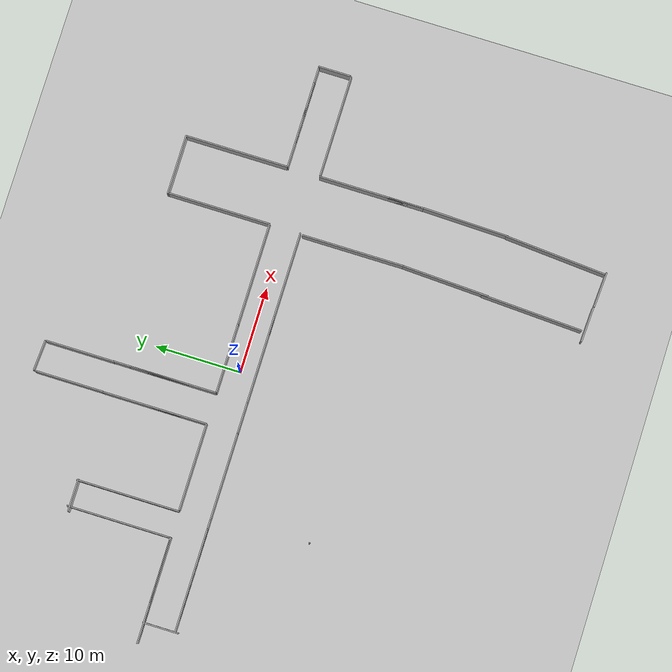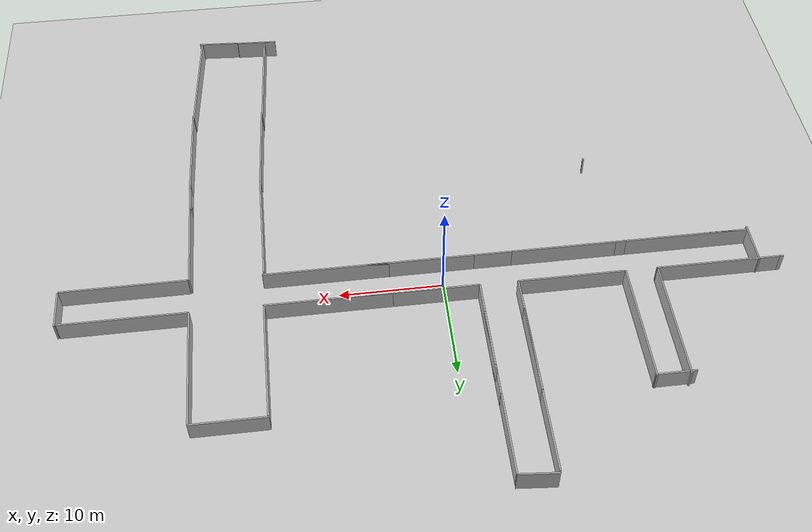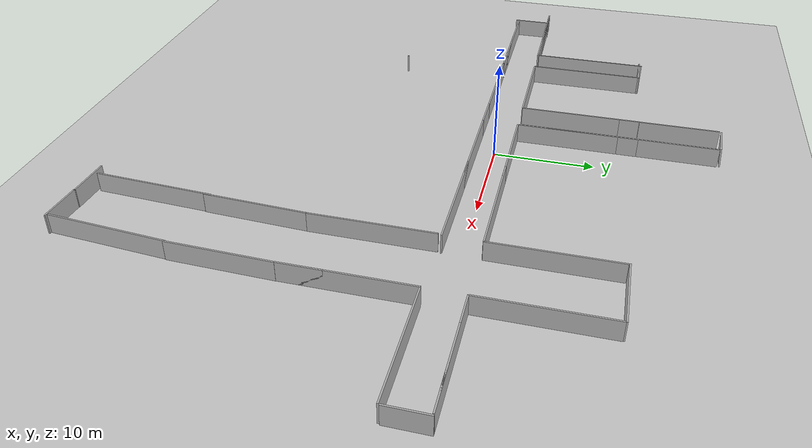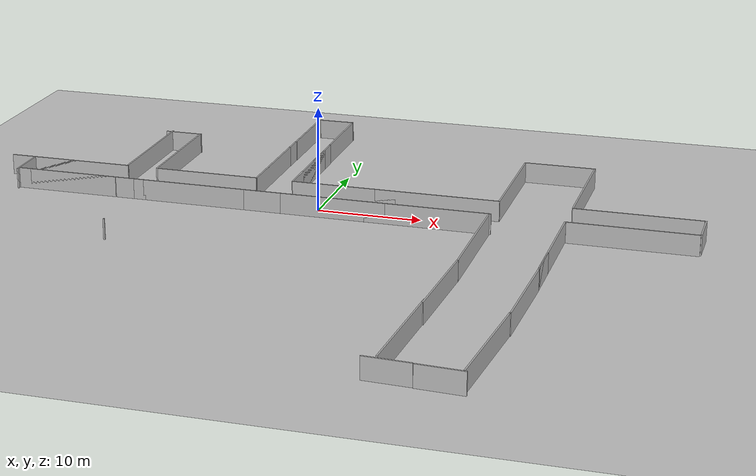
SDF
<sdf version="1.7">
 <world name="hallway_world">
  <physics type="ode">
   <max_step_size>0.001</max_step_size>
   <real_time_factor>1</real_time_factor>
   <real_time_update_rate>1000</real_time_update_rate>
  </physics>
  <light name="sun" type="directional">
   <pose>0 0 10 0 -0 0</pose>
   <diffuse>0.8 0.8 0.8 1</diffuse>
   <specular>0.2 0.2 0.2 1</specular>
   <attenuation>
    <range>1000</range>
    <constant>0.9</constant>
    <linear>0.01</linear>
    <quadratic>0.001</quadratic>
   </attenuation>
   <direction>-0.5 0.1 -0.9</direction>
   <spot><inner_angle>0</inner_angle><outer_angle>0</outer_angle><falloff>0</falloff></spot>
  </light>
  <model name="ground_plane">
   <static>1</static>
   <link name="link">
    <collision name="collision">
     <geometry><plane><normal>0 0 1</normal><size>100 100</size></plane></geometry>
     <surface><friction><ode><mu>100</mu><mu2>50</mu2></ode></friction></surface>
    </collision>
    <visual name="visual">
     <cast_shadows>0</cast_shadows>
     <geometry><plane><normal>0 0 1</normal><size>100 100</size></plane></geometry>
     <material>
      <script><uri>file://media/materials/scripts/gazebo.material</uri><name>Gazebo/Grey</name></script>
     </material>
    </visual>
   </link>
  </model>
  <scene><ambient>0.4 0.4 0.4 1</ambient><background>0.7 0.7 0.7 1</background><shadows>1</shadows></scene>
  <model name="straight_x_left_1">
   <static>1</static>
   <pose>-26.1049 1.825 1 0 -0 0</pose>
   <link name="link">
    <collision name="collision"><geometry><box><size>12 0.15 2</size></box></geometry></collision>
    <visual name="visual">
     <geometry><box><size>12 0.15 2</size></box></geometry>
     <material><ambient>0.7 0.7 0.7 1</ambient><diffuse>0.7 0.7 0.7 1</diffuse></material>
    </visual>
   </link>
  </model>
  <model name="straight_x_right_2">
   <static>1</static>
   <pose>-22.7931 -1.825 1 0 -0 0</pose>
   <link name="link">
    <collision name="collision"><geometry><box><size>12 0.15 2</size></box></geometry></collision>
    <visual name="visual">
     <geometry><box><size>12 0.15 2</size></box></geometry>
     <material><ambient>0.7 0.7 0.7 1</ambient><diffuse>0.7 0.7 0.7 1</diffuse></material>
    </visual>
   </link>
  </model>
  <model name="straight_x_left_3">
   <static>1</static>
   <pose>-26.4837 1.825 1 0 -0 0</pose>
   <link name="link">
    <collision name="collision"><geometry><box><size>12 0.15 2</size></box></geometry></collision>
    <visual name="visual">
     <geometry><box><size>12 0.15 2</size></box></geometry>
     <material><ambient>0.7 0.7 0.7 1</ambient><diffuse>0.7 0.7 0.7 1</diffuse></material>
    </visual>
   </link>
  </model>
  <model name="straight_x_right_4">
   <static>1</static>
   <pose>-24 -1.825 1 0 -0 0</pose>
   <link name="link">
    <collision name="collision"><geometry><box><size>12 0.15 2</size></box></geometry></collision>
    <visual name="visual">
     <geometry><box><size>12 0.15 2</size></box></geometry>
     <material><ambient>0.7 0.7 0.7 1</ambient><diffuse>0.7 0.7 0.7 1</diffuse></material>
    </visual>
   </link>
  </model>
  <model name="straight_y_left_5">
   <static>1</static>
   <pose>-20.192 7.9556 1 0 -0 0</pose>
   <link name="link">
    <collision name="collision"><geometry><box><size>0.15 12 2</size></box></geometry></collision>
    <visual name="visual">
     <geometry><box><size>0.15 12 2</size></box></geometry>
     <material><ambient>0.7 0.7 0.7 1</ambient><diffuse>0.7 0.7 0.7 1</diffuse></material>
    </visual>
   </link>
  </model>
  <model name="straight_y_right_6">
   <static>1</static>
   <pose>-17.1044 7.81507 1 0 -0 0</pose>
   <link name="link">
    <collision name="collision"><geometry><box><size>0.15 12 2</size></box></geometry></collision>
    <visual name="visual">
     <geometry><box><size>0.15 12 2</size></box></geometry>
     <material><ambient>0.7 0.7 0.7 1</ambient><diffuse>0.7 0.7 0.7 1</diffuse></material>
    </visual>
   </link>
  </model>
  <model name="l_inner_7">
   <static>1</static>
   <pose>-19.825 -1.825 1 0 -0 0</pose>
   <link name="link">
    <collision name="collision"><geometry><box><size>0.15 0.15 2</size></box></geometry></collision>
    <visual name="visual">
     <geometry><box><size>0.15 0.15 2</size></box></geometry>
     <material><ambient>0.7 0.7 0.7 1</ambient><diffuse>0.7 0.7 0.7 1</diffuse></material>
    </visual>
   </link>
  </model>
  <model name="straight_x_left_8">
   <static>1</static>
   <pose>-11.9125 1.825 1 0 -0 0</pose>
   <link name="link">
    <collision name="collision"><geometry><box><size>10.175 0.15 2</size></box></geometry></collision>
    <visual name="visual">
     <geometry><box><size>10.175 0.15 2</size></box></geometry>
     <material><ambient>0.7 0.7 0.7 1</ambient><diffuse>0.7 0.7 0.7 1</diffuse></material>
    </visual>
   </link>
  </model>
  <model name="straight_x_right_9">
   <static>1</static>
   <pose>-11.9125 -1.825 1 0 -0 0</pose>
   <link name="link">
    <collision name="collision"><geometry><box><size>10.175 0.15 2</size></box></geometry></collision>
    <visual name="visual">
     <geometry><box><size>10.175 0.15 2</size></box></geometry>
     <material><ambient>0.7 0.7 0.7 1</ambient><diffuse>0.7 0.7 0.7 1</diffuse></material>
    </visual>
   </link>
  </model>
  <model name="straight_x_left_10">
   <static>1</static>
   <pose>1.9125 1.825 1 0 -0 0</pose>
   <link name="link">
    <collision name="collision"><geometry><box><size>10.175 0.15 2</size></box></geometry></collision>
    <visual name="visual">
     <geometry><box><size>10.175 0.15 2</size></box></geometry>
     <material><ambient>0.7 0.7 0.7 1</ambient><diffuse>0.7 0.7 0.7 1</diffuse></material>
    </visual>
   </link>
  </model>
  <model name="straight_x_right_11">
   <static>1</static>
   <pose>1.9125 -1.825 1 0 -0 0</pose>
   <link name="link">
    <collision name="collision"><geometry><box><size>10.175 0.15 2</size></box></geometry></collision>
    <visual name="visual">
     <geometry><box><size>10.175 0.15 2</size></box></geometry>
     <material><ambient>0.7 0.7 0.7 1</ambient><diffuse>0.7 0.7 0.7 1</diffuse></material>
    </visual>
   </link>
  </model>
  <model name="t_main_right_12">
   <static>1</static>
   <pose>-5 -1.825 1 0 -0 0</pose>
   <link name="link">
    <collision name="collision"><geometry><box><size>3.65 0.15 2</size></box></geometry></collision>
    <visual name="visual">
     <geometry><box><size>3.65 0.15 2</size></box></geometry>
     <material><ambient>0.7 0.7 0.7 1</ambient><diffuse>0.7 0.7 0.7 1</diffuse></material>
    </visual>
   </link>
  </model>
  <model name="straight_y_left_13">
   <static>1</static>
   <pose>-6.825 6.9125 1 0 -0 0</pose>
   <link name="link">
    <collision name="collision"><geometry><box><size>0.15 10.175 2</size></box></geometry></collision>
    <visual name="visual">
     <geometry><box><size>0.15 10.175 2</size></box></geometry>
     <material><ambient>0.7 0.7 0.7 1</ambient><diffuse>0.7 0.7 0.7 1</diffuse></material>
    </visual>
   </link>
  </model>
  <model name="straight_y_right_14">
   <static>1</static>
   <pose>-3.175 6.9125 1 0 -0 0</pose>
   <link name="link">
    <collision name="collision"><geometry><box><size>0.15 10.175 2</size></box></geometry></collision>
    <visual name="visual">
     <geometry><box><size>0.15 10.175 2</size></box></geometry>
     <material><ambient>0.7 0.7 0.7 1</ambient><diffuse>0.7 0.7 0.7 1</diffuse></material>
    </visual>
   </link>
  </model>
  <model name="straight_x_left_15">
   <static>1</static>
   <pose>11 1.825 1 0 -0 0</pose>
   <link name="link">
    <collision name="collision"><geometry><box><size>12 0.15 2</size></box></geometry></collision>
    <visual name="visual">
     <geometry><box><size>12 0.15 2</size></box></geometry>
     <material><ambient>0.7 0.7 0.7 1</ambient><diffuse>0.7 0.7 0.7 1</diffuse></material>
    </visual>
   </link>
  </model>
  <model name="straight_x_right_16">
   <static>1</static>
   <pose>11 -1.825 1 0 -0 0</pose>
   <link name="link">
    <collision name="collision"><geometry><box><size>12 0.15 2</size></box></geometry></collision>
    <visual name="visual">
     <geometry><box><size>12 0.15 2</size></box></geometry>
     <material><ambient>0.7 0.7 0.7 1</ambient><diffuse>0.7 0.7 0.7 1</diffuse></material>
    </visual>
   </link>
  </model>
  <model name="straight_y_left_17">
   <static>1</static>
   <pose>16.8311 -8.11933 1 0 -0 0</pose>
   <link name="link">
    <collision name="collision"><geometry><box><size>0.15 12 2</size></box></geometry></collision>
    <visual name="visual">
     <geometry><box><size>0.15 12 2</size></box></geometry>
     <material><ambient>0.7 0.7 0.7 1</ambient><diffuse>0.7 0.7 0.7 1</diffuse></material>
    </visual>
   </link>
  </model>
  <model name="straight_y_right_18">
   <static>1</static>
   <pose>23.8337 7.85279 1 0 -0 0</pose>
   <link name="link">
    <collision name="collision"><geometry><box><size>0.15 12 2</size></box></geometry></collision>
    <visual name="visual">
     <geometry><box><size>0.15 12 2</size></box></geometry>
     <material><ambient>0.7 0.7 0.7 1</ambient><diffuse>0.7 0.7 0.7 1</diffuse></material>
    </visual>
   </link>
  </model>
  <model name="straight_y_left_19">
   <static>1</static>
   <pose>16.9586 7.7823 1 0 -0 0</pose>
   <link name="link">
    <collision name="collision"><geometry><box><size>0.15 12 2</size></box></geometry></collision>
    <visual name="visual">
     <geometry><box><size>0.15 12 2</size></box></geometry>
     <material><ambient>0.7 0.7 0.7 1</ambient><diffuse>0.7 0.7 0.7 1</diffuse></material>
    </visual>
   </link>
  </model>
  <model name="straight_y_right_20">
   <static>1</static>
   <pose>23.825 -7.98208 1 0 -0 0</pose>
   <link name="link">
    <collision name="collision"><geometry><box><size>0.15 12 2</size></box></geometry></collision>
    <visual name="visual">
     <geometry><box><size>0.15 12 2</size></box></geometry>
     <material><ambient>0.7 0.7 0.7 1</ambient><diffuse>0.7 0.7 0.7 1</diffuse></material>
    </visual>
   </link>
  </model>
  <model name="straight_x_left_21">
   <static>1</static>
   <pose>29.825 1.825 1 0 -0 0</pose>
   <link name="link">
    <collision name="collision"><geometry><box><size>12 0.15 2</size></box></geometry></collision>
    <visual name="visual">
     <geometry><box><size>12 0.15 2</size></box></geometry>
     <material><ambient>0.7 0.7 0.7 1</ambient><diffuse>0.7 0.7 0.7 1</diffuse></material>
    </visual>
   </link>
  </model>
  <model name="straight_x_right_22">
   <static>1</static>
   <pose>29.925 -2.00859 1 0 -0 0</pose>
   <link name="link">
    <collision name="collision"><geometry><box><size>12 0.15 2</size></box></geometry></collision>
    <visual name="visual">
     <geometry><box><size>12 0.15 2</size></box></geometry>
     <material><ambient>0.7 0.7 0.7 1</ambient><diffuse>0.7 0.7 0.7 1</diffuse></material>
    </visual>
   </link>
  </model>
  <model name="straight_x_left_23">
   <static>1</static>
   <pose>30.5 1.825 1 0 -0 0</pose>
   <link name="link">
    <collision name="collision"><geometry><box><size>7 0.15 2</size></box></geometry></collision>
    <visual name="visual">
     <geometry><box><size>7 0.15 2</size></box></geometry>
     <material><ambient>0.7 0.7 0.7 1</ambient><diffuse>0.7 0.7 0.7 1</diffuse></material>
    </visual>
   </link>
  </model>
  <model name="straight_x_right_24">
   <static>1</static>
   <pose>20.3778 13.9071 1 0 -0 0</pose>
   <link name="link">
    <collision name="collision"><geometry><box><size>7 0.15 2</size></box></geometry></collision>
    <visual name="visual">
     <geometry><box><size>7 0.15 2</size></box></geometry>
     <material><ambient>0.7 0.7 0.7 1</ambient><diffuse>0.7 0.7 0.7 1</diffuse></material>
    </visual>
   </link>
  </model>
  <model name="dead_end_cap_25">
   <static>1</static>
   <pose>35.9627 0 1 0 -0 0</pose>
   <link name="link">
    <collision name="collision"><geometry><box><size>0.15 3.8 2</size></box></geometry></collision>
    <visual name="visual">
     <geometry><box><size>0.15 3.8 2</size></box></geometry>
     <material><ambient>0.7 0.7 0.7 1</ambient><diffuse>0.7 0.7 0.7 1</diffuse></material>
    </visual>
   </link>
  </model>
  <model name="straight_y_left_26">
   <static>1</static>
   <pose>16.5858 -35.8481 1 0 -0 1.52388</pose>
   <link name="link">
    <collision name="collision"><geometry><box><size>0.15 4.175 2</size></box></geometry></collision>
    <visual name="visual">
     <geometry><box><size>0.15 4.175 2</size></box></geometry>
     <material><ambient>0.7 0.7 0.7 1</ambient><diffuse>0.7 0.7 0.7 1</diffuse></material>
    </visual>
   </link>
  </model>
  <model name="straight_y_right_27">
   <static>1</static>
   <pose>-30.0697 -0.112619 1 0 -0 0</pose>
   <link name="link">
    <collision name="collision"><geometry><box><size>0.15 4.175 2</size></box></geometry></collision>
    <visual name="visual">
     <geometry><box><size>0.15 4.175 2</size></box></geometry>
     <material><ambient>0.7 0.7 0.7 1</ambient><diffuse>0.7 0.7 0.7 1</diffuse></material>
    </visual>
   </link>
  </model>
  <model name="straight_y_left_28">
   <static>1</static>
   <pose>20.7934 -36.1273 1 0 -0 1.51146</pose>
   <link name="link">
    <collision name="collision"><geometry><box><size>0.15 4.175 2</size></box></geometry></collision>
    <visual name="visual">
     <geometry><box><size>0.15 4.175 2</size></box></geometry>
     <material><ambient>0.7 0.7 0.7 1</ambient><diffuse>0.7 0.7 0.7 1</diffuse></material>
    </visual>
   </link>
  </model>
  <model name="straight_y_right_29">
   <static>1</static>
   <pose>23.825 -12.2094 1 0 -0 0</pose>
   <link name="link">
    <collision name="collision"><geometry><box><size>0.15 4.175 2</size></box></geometry></collision>
    <visual name="visual">
     <geometry><box><size>0.15 4.175 2</size></box></geometry>
     <material><ambient>0.7 0.7 0.7 1</ambient><diffuse>0.7 0.7 0.7 1</diffuse></material>
    </visual>
   </link>
  </model>
  <model name="t_main_left_30">
   <static>1</static>
   <pose>-4.94297 22.176 1 -3.11506 0.077624 -1.63727</pose>
   <link name="link">
    <collision name="collision"><geometry><box><size>0.15 3.65 2</size></box></geometry></collision>
    <visual name="visual">
     <geometry><box><size>0.15 3.65 2</size></box></geometry>
     <material><ambient>0.7 0.7 0.7 1</ambient><diffuse>0.7 0.7 0.7 1</diffuse></material>
    </visual>
   </link>
  </model>
  <model name="straight_x_left_31">
   <static>1</static>
   <pose>23.7071 -19.3725 1 0 0 -1.59707</pose>
   <link name="link">
    <collision name="collision"><geometry><box><size>10.175 0.15 2</size></box></geometry></collision>
    <visual name="visual">
     <geometry><box><size>10.175 0.15 2</size></box></geometry>
     <material><ambient>0.7 0.7 0.7 1</ambient><diffuse>0.7 0.7 0.7 1</diffuse></material>
    </visual>
   </link>
  </model>
  <model name="straight_x_right_32">
   <static>1</static>
   <pose>16.5891 -19.1164 1 0 0 -1.61675</pose>
   <link name="link">
    <collision name="collision"><geometry><box><size>10.175 0.15 2</size></box></geometry></collision>
    <visual name="visual">
     <geometry><box><size>10.175 0.15 2</size></box></geometry>
     <material><ambient>0.7 0.7 0.7 1</ambient><diffuse>0.7 0.7 0.7 1</diffuse></material>
    </visual>
   </link>
  </model>
  <model name="straight_y_left_33">
   <static>1</static>
   <pose>-6.825 9.5 1 0 -0 0</pose>
   <link name="link">
    <collision name="collision"><geometry><box><size>0.15 9 2</size></box></geometry></collision>
    <visual name="visual">
     <geometry><box><size>0.15 9 2</size></box></geometry>
     <material><ambient>0.7 0.7 0.7 1</ambient><diffuse>0.7 0.7 0.7 1</diffuse></material>
    </visual>
   </link>
  </model>
  <model name="straight_y_right_34">
   <static>1</static>
   <pose>-3.175 9.5 1 0 -0 0</pose>
   <link name="link">
    <collision name="collision"><geometry><box><size>0.15 9 2</size></box></geometry></collision>
    <visual name="visual">
     <geometry><box><size>0.15 9 2</size></box></geometry>
     <material><ambient>0.7 0.7 0.7 1</ambient><diffuse>0.7 0.7 0.7 1</diffuse></material>
    </visual>
   </link>
  </model>
  <model name="dead_end_cap_35">
   <static>1</static>
   <pose>-18.8772 13.6647 1 0 -0 0</pose>
   <link name="link">
    <collision name="collision"><geometry><box><size>3.8 0.15 2</size></box></geometry></collision>
    <visual name="visual">
     <geometry><box><size>3.8 0.15 2</size></box></geometry>
     <material><ambient>0.7 0.7 0.7 1</ambient><diffuse>0.7 0.7 0.7 1</diffuse></material>
    </visual>
   </link>
  </model>
  <model name="straight_x_left_36">
   <static>1</static>
   <pose>16.0212 -29.4477 1 0 -0 1.51995</pose>
   <link name="link">
    <collision name="collision"><geometry><box><size>12 0.15 2</size></box></geometry></collision>
    <visual name="visual">
     <geometry><box><size>12 0.15 2</size></box></geometry>
     <material><ambient>0.7 0.7 0.7 1</ambient><diffuse>0.7 0.7 0.7 1</diffuse></material>
    </visual>
   </link>
  </model>
  <model name="straight_x_right_37">
   <static>1</static>
   <pose>23.0864 -30.1463 1 0 -0 1.49541</pose>
   <link name="link">
    <collision name="collision"><geometry><box><size>12 0.15 2</size></box></geometry></collision>
    <visual name="visual">
     <geometry><box><size>12 0.15 2</size></box></geometry>
     <material><ambient>0.7 0.7 0.7 1</ambient><diffuse>0.7 0.7 0.7 1</diffuse></material>
    </visual>
   </link>
  </model>
  <model name="straight_y_left_38">
   <static>1</static>
   <pose>-6.8026 18.0397 1 0 -0 0</pose>
   <link name="link">
    <collision name="collision"><geometry><box><size>0.15 8 2</size></box></geometry></collision>
    <visual name="visual">
     <geometry><box><size>0.15 8 2</size></box></geometry>
     <material><ambient>0.7 0.7 0.7 1</ambient><diffuse>0.7 0.7 0.7 1</diffuse></material>
    </visual>
   </link>
  </model>
  <model name="straight_y_right_39">
   <static>1</static>
   <pose>-3.19475 17.8986 1 0 -0 0</pose>
   <link name="link">
    <collision name="collision"><geometry><box><size>0.15 8 2</size></box></geometry></collision>
    <visual name="visual">
     <geometry><box><size>0.15 8 2</size></box></geometry>
     <material><ambient>0.7 0.7 0.7 1</ambient><diffuse>0.7 0.7 0.7 1</diffuse></material>
    </visual>
   </link>
  </model>
  <model name="l_inner_40">
   <static>1</static>
   <pose>-16.175 -13.175 1 0 -0 0</pose>
   <link name="link">
    <collision name="collision"><geometry><box><size>0.15 0.15 2</size></box></geometry></collision>
    <visual name="visual">
     <geometry><box><size>0.15 0.15 2</size></box></geometry>
     <material><ambient>0.7 0.7 0.7 1</ambient><diffuse>0.7 0.7 0.7 1</diffuse></material>
    </visual>
   </link>
  </model>
  <gravity>0 0 -9.8</gravity>
  <magnetic_field>6e-06 2.3e-05 -4.2e-05</magnetic_field>
  <atmosphere type="adiabatic"/>
  <audio><device>default</device></audio>
  <spherical_coordinates>
   <surface_model>EARTH_WGS84</surface_model>
   <latitude_deg>0</latitude_deg>
   <longitude_deg>0</longitude_deg>
   <elevation>0</elevation>
   <heading_deg>0</heading_deg>
  </spherical_coordinates>
 </world>
</sdf>
